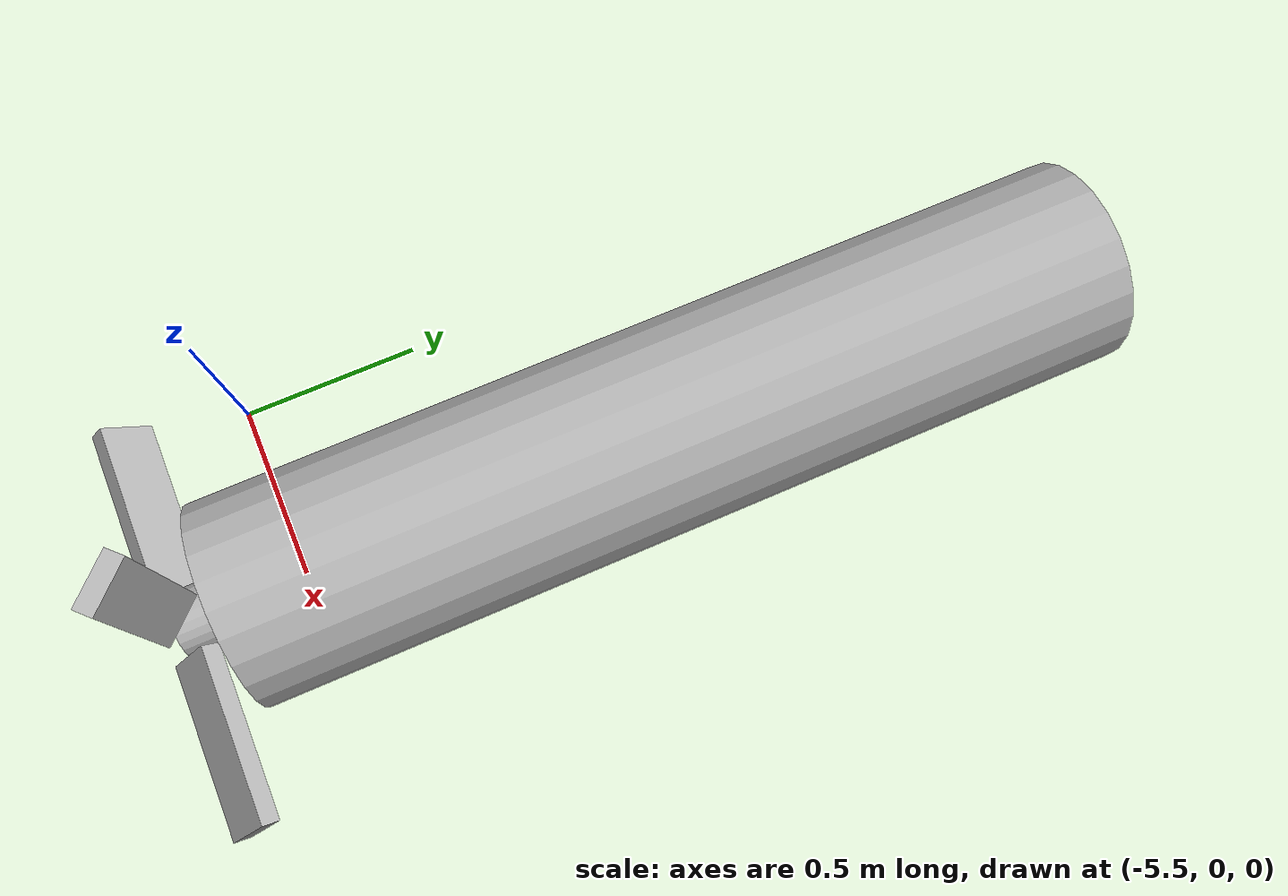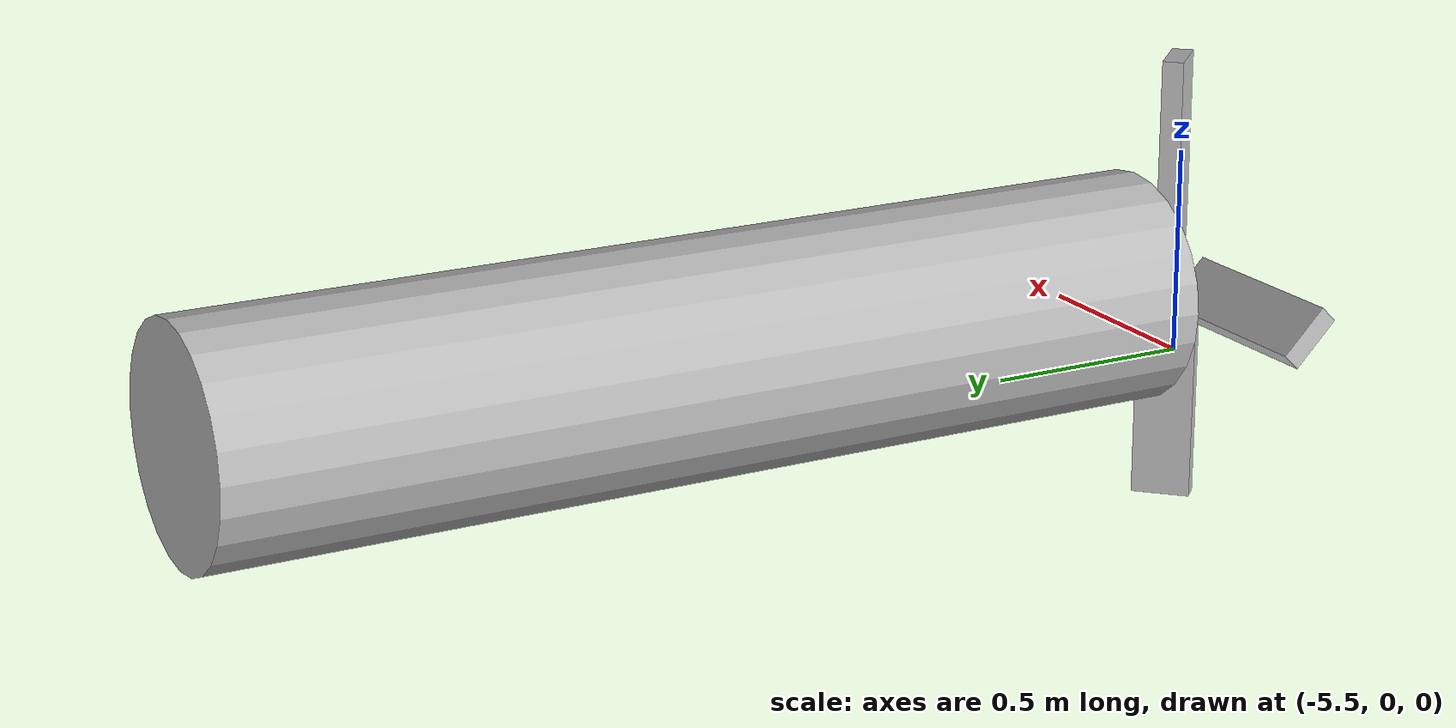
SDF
<?xml version="1.0" ?>
<sdf version="1.6">
    <model name='submarine_buoyant'>
        <pose>-5 0 0 1.5707963267948966 0 0</pose>
        <link name='body'>
          <pose>0 0 -1.07935 0 0 0</pose>
          <inertial>
            <mass>367.5663404700058</mass>
            <inertia>
              <ixx>215.33261445867842</ixx>
              <ixy>0</ixy>
              <ixz>0</ixz>
              <iyy>215.33261445867842</iyy>
              <iyz>0</iyz>
              <izz>16.54048532115026</izz>
            </inertia>
          </inertial>

          <visual name='body_visual'>
            <geometry>
              <cylinder>
                <radius>0.3</radius>
                <length>2.6</length>
              </cylinder>
            </geometry>
          </visual>
          <collision name='body_collision'>
            <geometry>
              <cylinder>
                <radius>0.3</radius>
                <length>2.6</length>
              </cylinder>
            </geometry>
          </collision>

          <visual name='spacer_visual'>
            <pose>0 0 1.378546 0 0 0</pose>
            <geometry>
              <cylinder>
                <radius>0.0933402</radius>
                <length>0.127211</length>
              </cylinder>
            </geometry>
          </visual>
        </link>

        <link name='propeller'>
          <pose>0 0 0.3455 3.14159 0 0</pose>
          <inertial>
            <mass>8.410409900000001</mass>
            <inertia>
              <ixx>0.17730244606378792</ixx>
              <ixy>0</ixy>
              <ixz>0</ixz>
              <iyy>0.17730244606378792</iyy>
              <iyz>0</iyz>
              <izz>0.35043374583333337</izz>
            </inertia>
          </inertial>

          <visual name="blade1_visual">
            <pose>0.3433402 0.0 0 -0.7853981633974483 0 0.0</pose>
            <geometry>
              <box>
                <size>0.5 0.154178 0.05455</size>
              </box>
            </geometry>
          </visual>
          <collision name="blade1_collision">
            <pose>0.3433402 0.0 0 -0.7853981633974483 0 0.0</pose>
            <geometry>
              <box>
                <size>0.5 0.154178 0.05455</size>
              </box>
            </geometry>
          </collision>

          <visual name="blade2_visual">
            <pose>0.0 0.3433402 0 -0.7853981633974483 0 1.5707963267948966</pose>
            <geometry>
              <box>
                <size>0.5 0.154178 0.05455</size>
              </box>
            </geometry>
          </visual>
          <collision name="blade2_collision">
            <pose>0.0 0.3433402 0 -0.7853981633974483 0 1.5707963267948966</pose>
            <geometry>
              <box>
                <size>0.5 0.154178 0.05455</size>
              </box>
            </geometry>
          </collision>

          <visual name="blade3_visual">
            <pose>-0.3433402 -0.0 0 0.7853981633974483 0 0.0</pose>
            <geometry>
              <box>
                <size>0.5 0.154178 0.05455</size>
              </box>
            </geometry>
          </visual>
          <collision name="blade3_collision">
            <pose>-0.3433402 -0.0 0 0.7853981633974483 0 0.0</pose>
            <geometry>
              <box>
                <size>0.5 0.154178 0.05455</size>
              </box>
            </geometry>
          </collision>

          <visual name="blade4_visual">
            <pose>-0.0 -0.3433402 0 0.7853981633974483 0 1.5707963267948966</pose>
            <geometry>
              <box>
                <size>0.5 0.154178 0.05455</size>
              </box>
            </geometry>
          </visual>
          <collision name="blade4_collision">
            <pose>-0.0 -0.3433402 0 0.7853981633974483 0 1.5707963267948966</pose>
            <geometry>
              <box>
                <size>0.5 0.154178 0.05455</size>
              </box>
            </geometry>
          </collision>

        </link>

        <joint name='propeller_joint' type='revolute'>
          <parent>body</parent>
          <child>propeller</child>
          <axis>
            <xyz>0 0 1</xyz>
            <use_parent_model_frame>1</use_parent_model_frame>
            <limit>
              <lower>-1e+12</lower>
              <upper>1e+12</upper>
              <effort>-1</effort>
              <velocity>-1</velocity>
            </limit>
          </axis>
        </joint>
      </model>
</sdf>
